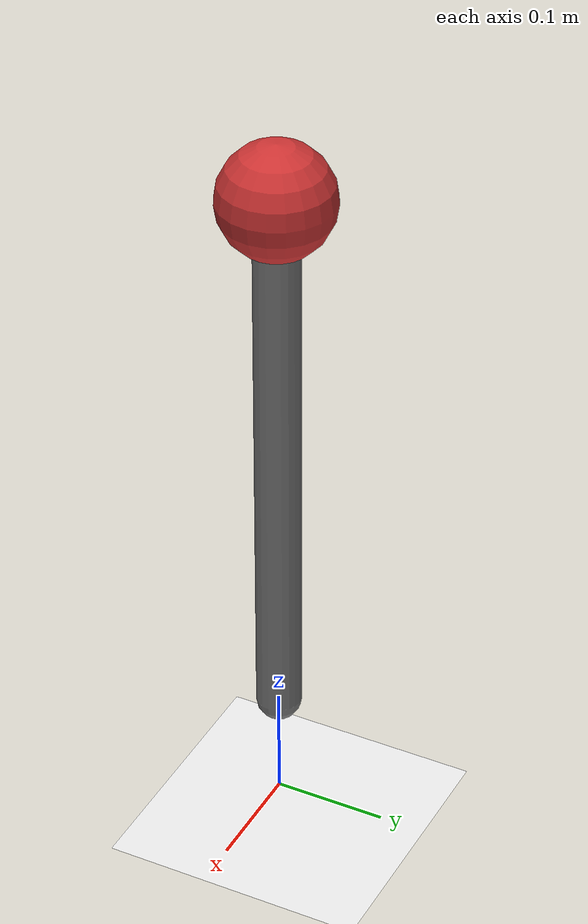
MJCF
<mujoco model="inverted_pendulum_kinematics">
    <option gravity="0 0 -9.81"/>

    <worldbody>
        <light diffuse=".5 .5 .5" pos="0 0 3" dir="0 0 -1"/>
        <geom name="floor" type="plane" size="5 5 0.1" rgba=".9 .9 .9 1"/>
        <body name="base" pos="0 0 0.1">
            <body name="pendulum" pos="0 0 0">
                <joint name="pendulum_joint" type="ball" damping="0.1"/>
                <geom name="rod" type="capsule" fromto="0 0 0 0 0 0.5" size="0.02" rgba=".5 .5 .5 1"/>
                <geom name="mass" type="sphere" pos="0 0 0.5" size="0.05" rgba=".8 .2 .2 1"/>
            </body>
        </body>
    </worldbody>

    <actuator>
        <motor name="pendulum_motor_x" joint="pendulum_joint" gear="10 0 0" ctrllimited="true" ctrlrange="-1 1"/>
        <motor name="pendulum_motor_y" joint="pendulum_joint" gear="0 10 0" ctrllimited="true" ctrlrange="-1 1"/>
    </actuator>

</mujoco>
